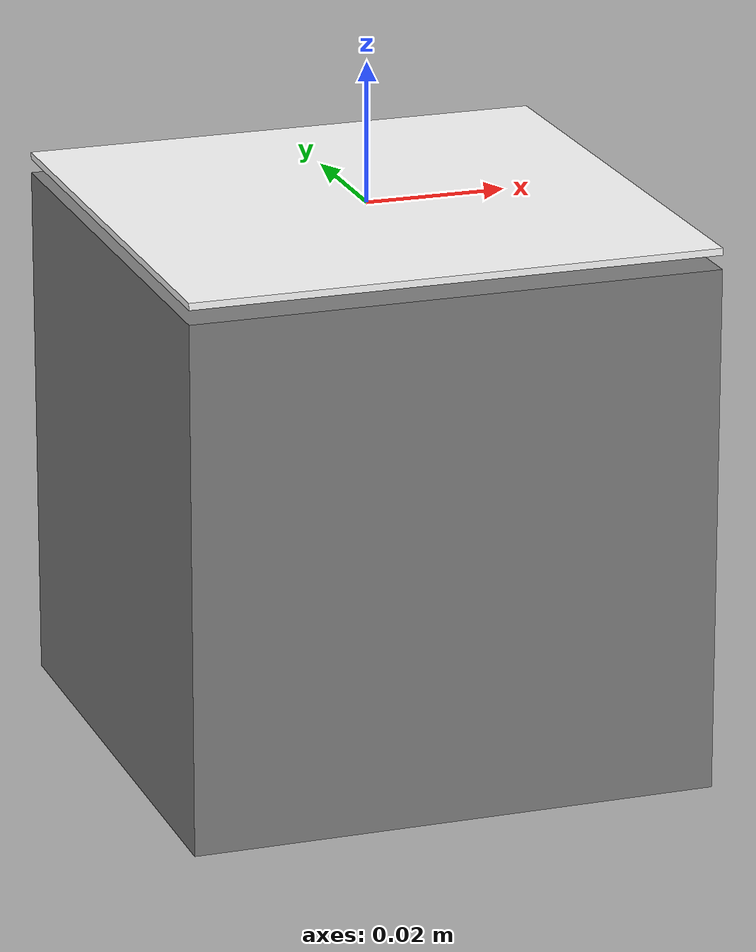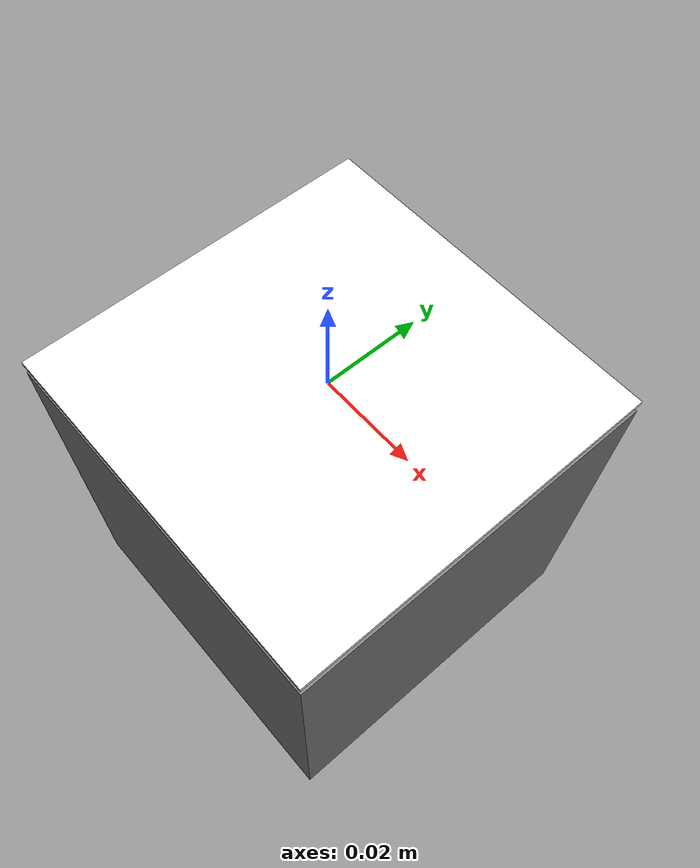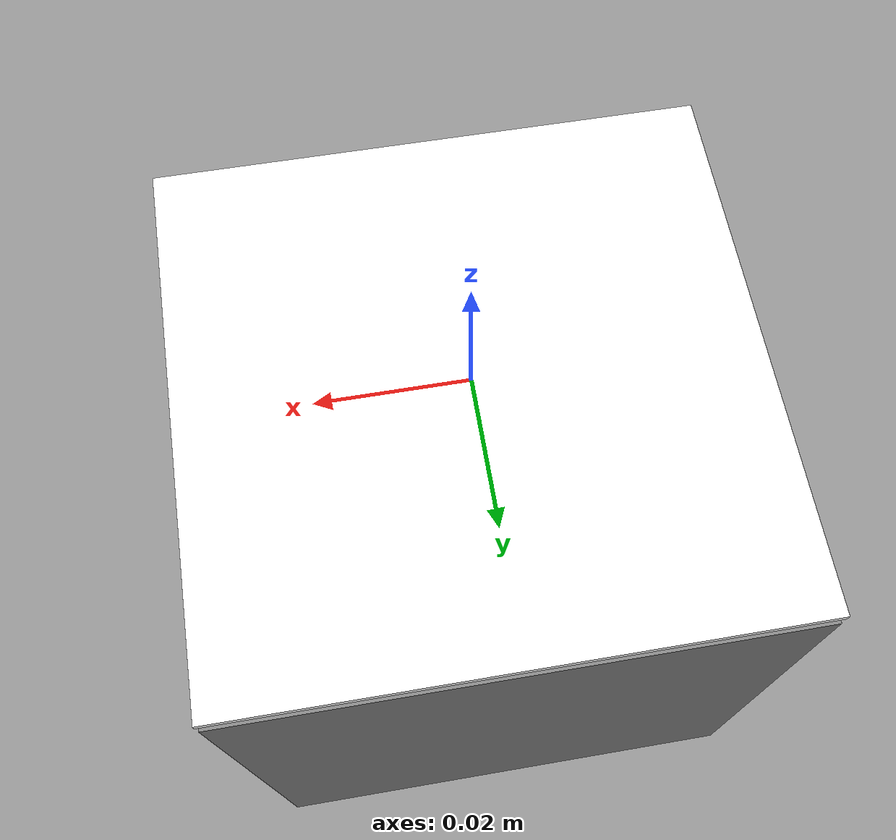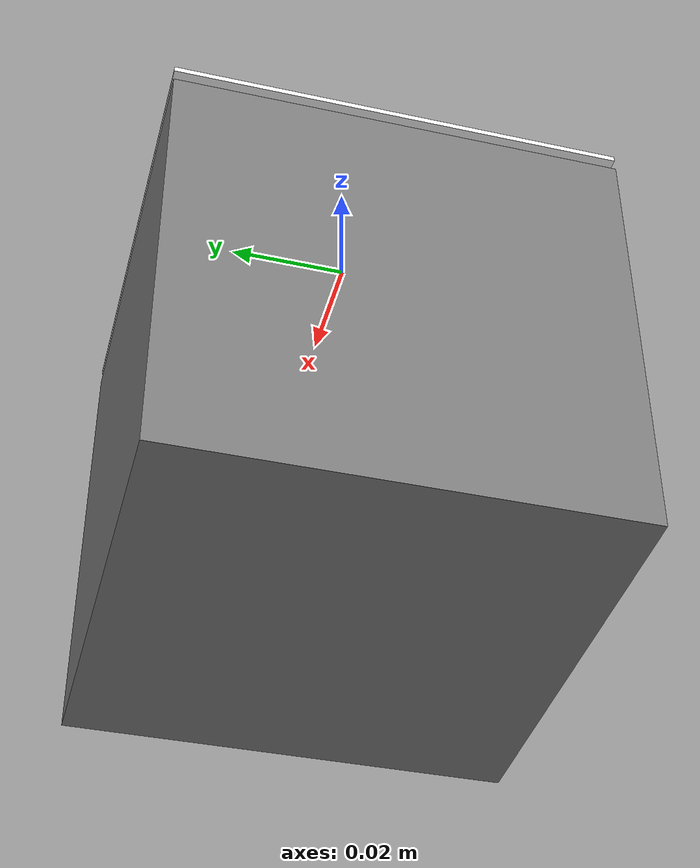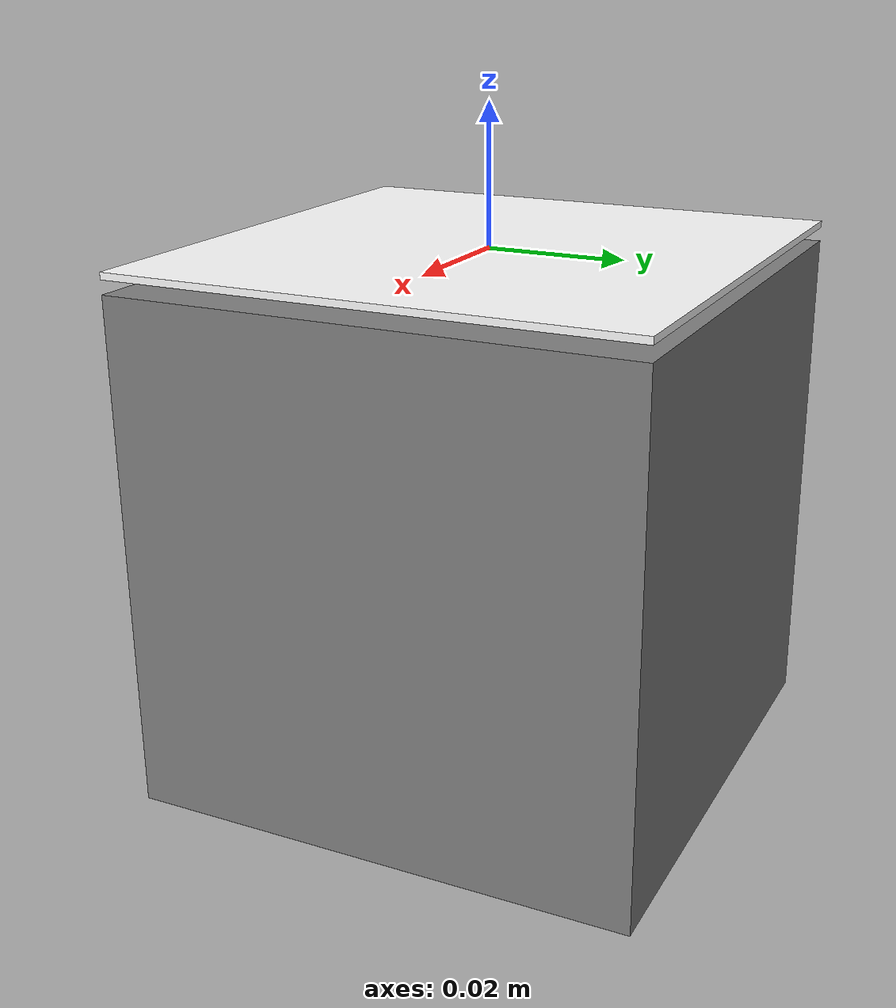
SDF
<?xml version="1.0" encoding="UTF-8"?>
<sdf version='1.9'>
  <model name='arucotag1'>
    <static>true</static>

    <link name='link'>

      <visual name="box">
        <pose>0 0 -0.04 0 0 0</pose>
        <geometry>
          <box><size>0.075 0.075 0.075</size></box>
        </geometry>
        <material><diffuse>0.5 0.5 0.5 1</diffuse></material>
      </visual>

      <visual name="tag">
        <geometry>
          <box>
            <size>0.075 0.075 0.001</size>
          </box>
        </geometry>
        <material>
          <diffuse>1 1 1 1</diffuse>
          <specular>0.4 0.4 0.4 1</specular>
          <pbr>
            <metal>
              <albedo_map>model://arucotag1/materials/textures/aruco-201.png</albedo_map>
            </metal>
          </pbr>
        </material>
      </visual>

    </link>

  </model>
</sdf>
